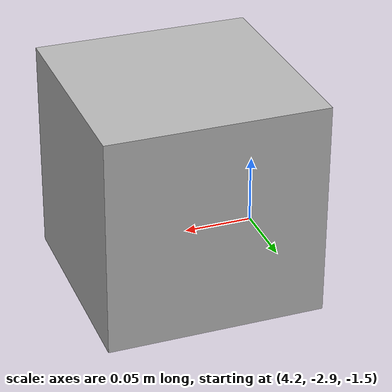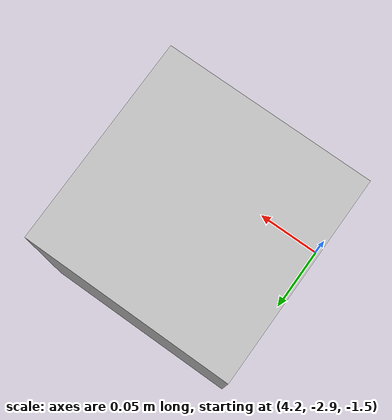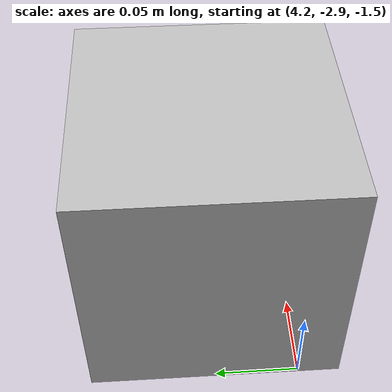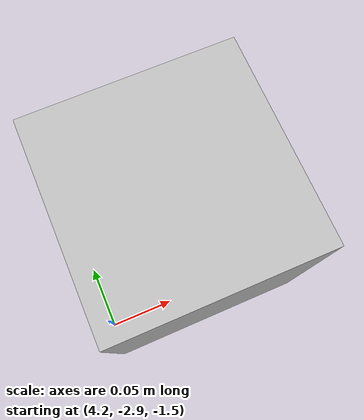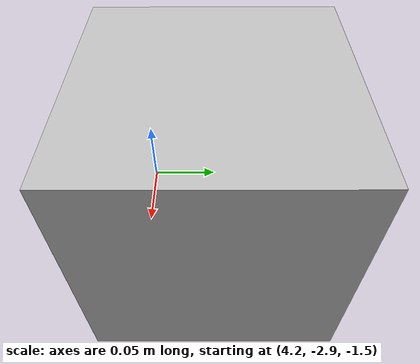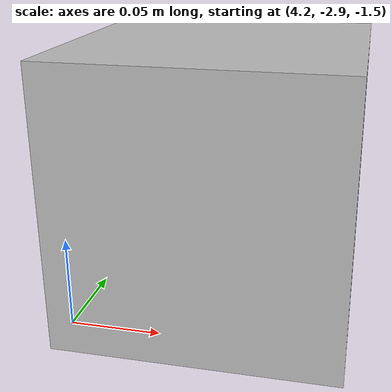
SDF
<sdf version="1.7">
 <world name="default">
  <model name="orthogonal_747_2.000.15_TS">
   <static>1</static>
   <link name="u_link_0_1_5">
    <inertial>
     <mass>1</mass>
     <inertia>
      <ixx>0.166667</ixx>
      <ixy>0</ixy>
      <ixz>0</ixz>
      <iyy>0.166667</iyy>
      <iyz>0</iyz>
      <izz>0.166667</izz>
     </inertia>
    </inertial>
    <pose>10.75 2.15 1.075 0 -0 0</pose>
    <visual name="visual_0">
     <laser_retro>281</laser_retro>
     <geometry><box><size>0.15 1e-06 0.15</size></box></geometry>
     <material>
      <script><name>Gazebo/Grey</name><uri>file://media/materials/scripts/gazebo.material</uri></script>
      <shader type="pixel"><normal_map>__default__</normal_map></shader>
      <ambient>0.678 0.498 0.659 1</ambient>
      <diffuse>0.7 0.7 0.7 1</diffuse>
      <specular>0.01 0.01 0.01 1</specular>
      <emissive>0 0 0 1</emissive>
     </material>
     <pose>0 -0.075 0 0 -0 0</pose>
     <transparency>1</transparency>
    </visual>
    <visual name="visual_1">
     <laser_retro>282</laser_retro>
     <geometry><box><size>0.15 1e-06 0.15</size></box></geometry>
     <material>
      <script><name>Gazebo/Grey</name><uri>file://media/materials/scripts/gazebo.material</uri></script>
      <shader type="pixel"><normal_map>__default__</normal_map></shader>
      <ambient>0.447 0.624 0.812 1</ambient>
      <diffuse>0.7 0.7 0.7 1</diffuse>
      <specular>0.01 0.01 0.01 1</specular>
      <emissive>0 0 0 1</emissive>
     </material>
     <pose>0 0.075 0 0 -0 0</pose>
     <transparency>1</transparency>
    </visual>
    <visual name="visual_2">
     <laser_retro>283</laser_retro>
     <geometry><box><size>0.15 0.15 1e-06</size></box></geometry>
     <material>
      <script><name>Gazebo/Grey</name><uri>file://media/materials/scripts/gazebo.material</uri></script>
      <shader type="pixel"><normal_map>__default__</normal_map></shader>
      <ambient>0.988 0.686 0.243 1</ambient>
      <diffuse>0.7 0.7 0.7 1</diffuse>
      <specular>0.01 0.01 0.01 1</specular>
      <emissive>0 0 0 1</emissive>
     </material>
     <pose>0 0 -0.075 0 -0 0</pose>
     <transparency>1</transparency>
    </visual>
    <visual name="visual_3">
     <laser_retro>284</laser_retro>
     <geometry><box><size>1e-06 0.15 0.15</size></box></geometry>
     <material>
      <script><name>Gazebo/Grey</name><uri>file://media/materials/scripts/gazebo.material</uri></script>
      <shader type="pixel"><normal_map>__default__</normal_map></shader>
      <ambient>0.988 0.914 0.31 1</ambient>
      <diffuse>0.7 0.7 0.7 1</diffuse>
      <specular>0.01 0.01 0.01 1</specular>
      <emissive>0 0 0 1</emissive>
     </material>
     <pose>0.075 0 0 0 -0 0</pose>
     <transparency>1</transparency>
    </visual>
    <visual name="visual_4">
     <laser_retro>285</laser_retro>
     <geometry><box><size>0.15 0.15 1e-06</size></box></geometry>
     <material>
      <script><name>Gazebo/Grey</name><uri>file://media/materials/scripts/gazebo.material</uri></script>
      <shader type="pixel"><normal_map>__default__</normal_map></shader>
      <ambient>0.937 0.161 0.161 1</ambient>
      <diffuse>0.7 0.7 0.7 1</diffuse>
      <specular>0.01 0.01 0.01 1</specular>
      <emissive>0 0 0 1</emissive>
     </material>
     <pose>0 0 0.075 0 -0 0</pose>
     <transparency>1</transparency>
    </visual>
    <visual name="visual_5">
     <laser_retro>286</laser_retro>
     <geometry><box><size>1e-06 0.15 0.15</size></box></geometry>
     <material>
      <script><name>Gazebo/Grey</name><uri>file://media/materials/scripts/gazebo.material</uri></script>
      <shader type="pixel"><normal_map>__default__</normal_map></shader>
      <ambient>0.541 0.886 0.204 1</ambient>
      <diffuse>0.7 0.7 0.7 1</diffuse>
      <specular>0.01 0.01 0.01 1</specular>
      <emissive>0 0 0 1</emissive>
     </material>
     <pose>-0.075 0 0 0 -0 0</pose>
     <transparency>1</transparency>
    </visual>
    <visual name="visual_texture">
     <geometry><box><size>0.149985 0.149985 0.149985</size></box></geometry>
     <material>
      <script>
       <uri>model://BASE_MODELS/simple_block_v2_textured/materials/scripts</uri>
       <uri>model://BASE_MODELS/simple_block_v2_textured/materials/textures</uri>
       <name>metal</name>
      </script>
     </material>
     <laser_retro>287</laser_retro>
    </visual>
    <collision name="collision">
     <geometry><box><size>0.15 0.15 0.15</size></box></geometry>
     <surface>
      <friction>
       <ode><mu>1</mu><mu2>1</mu2><fdir1>0 0 0</fdir1><slip1>0</slip1><slip2>0</slip2></ode>
       <torsional>
        <coefficient>1</coefficient>
        <patch_radius>0</patch_radius>
        <surface_radius>0</surface_radius>
        <use_patch_radius>1</use_patch_radius>
        <ode><slip>0</slip></ode>
       </torsional>
      </friction>
      <bounce><restitution_coefficient>0</restitution_coefficient><threshold>1e+06</threshold></bounce>
      <contact>
       <collide_without_contact>0</collide_without_contact>
       <collide_without_contact_bitmask>1</collide_without_contact_bitmask>
       <collide_bitmask>1</collide_bitmask>
       <ode>
        <soft_cfm>0</soft_cfm>
        <soft_erp>0.2</soft_erp>
        <kp>1e+13</kp>
        <kd>1</kd>
        <max_vel>0.01</max_vel>
        <min_depth>0</min_depth>
       </ode>
       <bullet>
        <split_impulse>1</split_impulse>
        <split_impulse_penetration_threshold>-0.01</split_impulse_penetration_threshold>
        <soft_cfm>0</soft_cfm>
        <soft_erp>0.2</soft_erp>
        <kp>1e+13</kp>
        <kd>1</kd>
       </bullet>
      </contact>
     </surface>
    </collision>
   </link>
   <pose>-6.47624 -5 -2.5 0 -0 0</pose>
  </model>
 </world>
</sdf>
